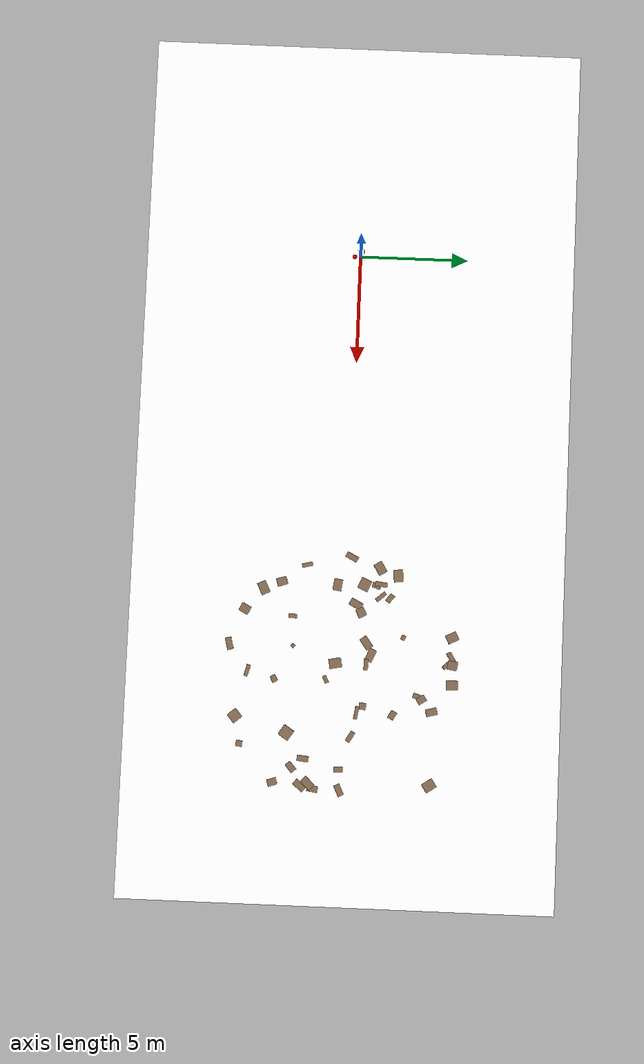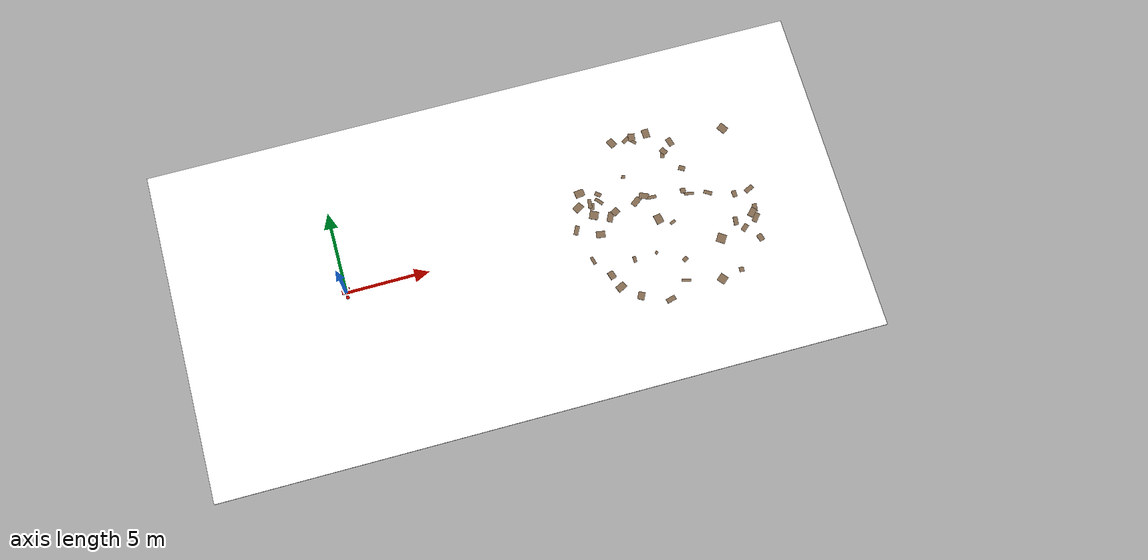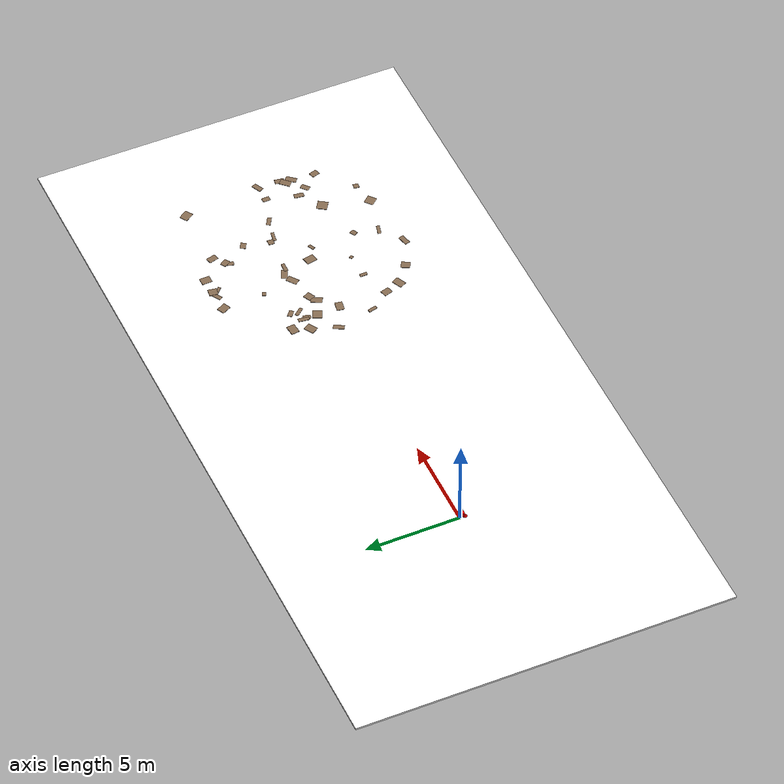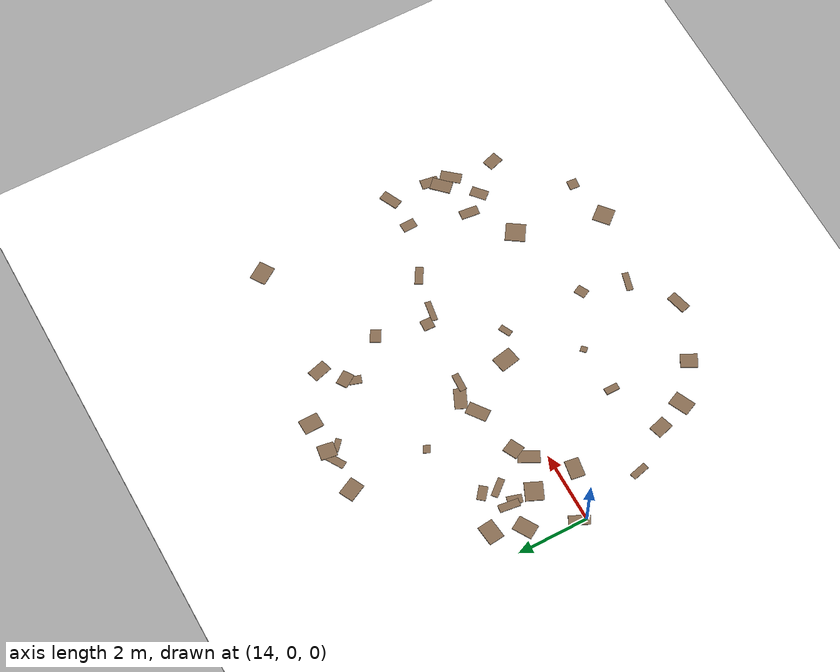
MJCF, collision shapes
<mujoco model="tita flat-and-rough scene">
  <include file="tita.xml"/>

  <statistic center="10 10 0.1" extent="20"/>

  <visual>
    <headlight diffuse=".8 .8 .8" ambient=".2 .2 .2" specular="1 1 1"/>
    <rgba force="1 0 0 1"/>
    <global azimuth="120" elevation="-20"/>
    <map force="0.01"/>
    <scale forcewidth="0.3" contactwidth="0.5" contactheight="0.2"/>
    <quality shadowsize="8192"/>
  </visual>

  <asset>
    <texture type="skybox" builtin="gradient" rgb1="1 1 1" rgb2="1 1 1" width="800" height="800"/>
    <texture type="2d" name="groundplane" builtin="checker" mark="edge" rgb1="1 1 1" rgb2="1 1 1" markrgb="0 0 0"
      width="300" height="300"/>
    <material name="groundplane" texture="groundplane" texuniform="true" texrepeat="5 5" reflectance="0"/>
    <material name="obstacle" rgba="0.5 0.4 0.3 1"/>
  </asset>

  <worldbody>
    <geom name="floor" type="box" pos="10 0 -0.05" size="20 10 0.05" material="groundplane"
          contype="1" conaffinity="0" priority="1" friction="0.6" condim="3"/>
    <geom name="rough_obstacle_0" type="box" pos="18.8883 4.6826 0.0099" size="0.1856 0.0822 0.0099" quat="0.93186 0 0 -0.36282" material="obstacle" contype="1" conaffinity="0" priority="1" friction="0.6" condim="3"/>
    <geom name="rough_obstacle_1" type="box" pos="19.7870 -3.1834 0.0089" size="0.1311 0.1603 0.0089" quat="0.85353 0 0 -0.52104" material="obstacle" contype="1" conaffinity="0" priority="1" friction="0.6" condim="3"/>
    <geom name="rough_obstacle_2" type="box" pos="18.9685 1.0124 0.0125" size="0.2564 0.0973 0.0125" quat="0.01876 0 0 0.99982" material="obstacle" contype="1" conaffinity="0" priority="1" friction="0.6" condim="3"/>
    <geom name="rough_obstacle_3" type="box" pos="18.9675 -0.3981 0.0090" size="0.2832 0.2236 0.0090" quat="0.63454 0 0 0.77289" material="obstacle" contype="1" conaffinity="0" priority="1" friction="0.6" condim="3"/>
    <geom name="rough_obstacle_4" type="box" pos="22.7927 -4.6474 0.0118" size="0.1385 0.1402 0.0118" quat="0.99897 0 0 -0.04543" material="obstacle" contype="1" conaffinity="0" priority="1" friction="0.6" condim="3"/>
    <geom name="rough_obstacle_5" type="box" pos="16.6359 -4.6474 0.0120" size="0.1986 0.2346 0.0120" quat="0.97060 0 0 -0.24068" material="obstacle" contype="1" conaffinity="0" priority="1" friction="0.6" condim="3"/>
    <geom name="rough_obstacle_6" type="box" pos="24.4731 -1.4429 0.0147" size="0.1774 0.2876 0.0147" quat="0.37533 0 0 0.92689" material="obstacle" contype="1" conaffinity="0" priority="1" friction="0.6" condim="3"/>
    <geom name="rough_obstacle_7" type="box" pos="18.5245 4.9252 0.0080" size="0.2848 0.1079 0.0080" quat="0.26937 0 0 -0.96304" material="obstacle" contype="1" conaffinity="0" priority="1" friction="0.6" condim="3"/>
    <geom name="rough_obstacle_8" type="box" pos="19.4593 -4.4238 0.0112" size="0.0889 0.2703 0.0112" quat="0.79319 0 0 0.60897" material="obstacle" contype="1" conaffinity="0" priority="1" friction="0.6" condim="3"/>
    <geom name="rough_obstacle_9" type="box" pos="14.5018 -1.8640 0.0131" size="0.2410 0.0931 0.0131" quat="0.61500 0 0 0.78852" material="obstacle" contype="1" conaffinity="0" priority="1" friction="0.6" condim="3"/>
    <geom name="rough_obstacle_10" type="box" pos="24.4827 -3.0649 0.0088" size="0.2152 0.1638 0.0088" quat="0.58983 0 0 0.80753" material="obstacle" contype="1" conaffinity="0" priority="1" friction="0.6" condim="3"/>
    <geom name="rough_obstacle_11" type="box" pos="19.7271 -0.8139 0.0104" size="0.0862 0.1746 0.0104" quat="0.84816 0 0 -0.52975" material="obstacle" contype="1" conaffinity="0" priority="1" friction="0.6" condim="3"/>
    <geom name="rough_obstacle_12" type="box" pos="15.3163 -3.0035 0.0080" size="0.2382 0.1875 0.0080" quat="0.59629 0 0 0.80277" material="obstacle" contype="1" conaffinity="0" priority="1" friction="0.6" condim="3"/>
    <geom name="rough_obstacle_13" type="box" pos="21.1833 0.6537 0.0129" size="0.0835 0.2948 0.0129" quat="0.65023 0 0 -0.75974" material="obstacle" contype="1" conaffinity="0" priority="1" friction="0.6" condim="3"/>
    <geom name="rough_obstacle_14" type="box" pos="21.5489 -4.9032 0.0082" size="0.2467 0.2507 0.0082" quat="0.90789 0 0 -0.41921" material="obstacle" contype="1" conaffinity="0" priority="1" friction="0.6" condim="3"/>
    <geom name="rough_obstacle_15" type="box" pos="21.2321 2.3093 0.0105" size="0.1928 0.1479 0.0105" quat="0.96656 0 0 -0.25645" material="obstacle" contype="1" conaffinity="0" priority="1" friction="0.6" condim="3"/>
    <geom name="rough_obstacle_16" type="box" pos="18.2588 -5.3038 0.0141" size="0.2844 0.1394 0.0141" quat="0.99155 0 0 0.12973" material="obstacle" contype="1" conaffinity="0" priority="1" friction="0.6" condim="3"/>
    <geom name="rough_obstacle_17" type="box" pos="15.8428 1.5824 0.0110" size="0.0945 0.2699 0.0110" quat="0.34645 0 0 -0.93807" material="obstacle" contype="1" conaffinity="0" priority="1" friction="0.6" condim="3"/>
    <geom name="rough_obstacle_18" type="box" pos="22.2186 -2.5131 0.0143" size="0.2651 0.2739 0.0143" quat="0.95757 0 0 -0.28819" material="obstacle" contype="1" conaffinity="0" priority="1" friction="0.6" condim="3"/>
    <geom name="rough_obstacle_19" type="box" pos="16.8881 -2.4294 0.0132" size="0.0947 0.1924 0.0132" quat="0.00094 0 0 -1.00000" material="obstacle" contype="1" conaffinity="0" priority="1" friction="0.6" condim="3"/>
    <geom name="rough_obstacle_20" type="box" pos="20.8822 0.9290 0.0144" size="0.1557 0.1557 0.0144" quat="0.71948 0 0 0.69451" material="obstacle" contype="1" conaffinity="0" priority="1" friction="0.6" condim="3"/>
    <geom name="rough_obstacle_21" type="box" pos="17.9871 0.9915 0.0085" size="0.1747 0.2989 0.0085" quat="0.44873 0 0 0.89367" material="obstacle" contype="1" conaffinity="0" priority="1" friction="0.6" condim="3"/>
    <geom name="rough_obstacle_22" type="box" pos="24.5926 -1.8058 0.0081" size="0.2925 0.1495 0.0081" quat="0.42274 0 0 -0.90625" material="obstacle" contype="1" conaffinity="0" priority="1" friction="0.6" condim="3"/>
    <geom name="rough_obstacle_23" type="box" pos="15.3459 1.3651 0.0080" size="0.2037 0.1202 0.0080" quat="0.80197 0 0 0.59737" material="obstacle" contype="1" conaffinity="0" priority="1" friction="0.6" condim="3"/>
    <geom name="rough_obstacle_24" type="box" pos="24.7329 -0.0031 0.0140" size="0.1370 0.2736 0.0140" quat="0.53290 0 0 0.84618" material="obstacle" contype="1" conaffinity="0" priority="1" friction="0.6" condim="3"/>
    <geom name="rough_obstacle_25" type="box" pos="23.3608 -1.7064 0.0123" size="0.1332 0.2587 0.0123" quat="0.05706 0 0 0.99837" material="obstacle" contype="1" conaffinity="0" priority="1" friction="0.6" condim="3"/>
    <geom name="rough_obstacle_26" type="box" pos="24.3623 4.1075 0.0112" size="0.2754 0.2269 0.0112" quat="0.47128 0 0 0.88198" material="obstacle" contype="1" conaffinity="0" priority="1" friction="0.6" condim="3"/>
    <geom name="rough_obstacle_27" type="box" pos="14.0596 0.1831 0.0087" size="0.1297 0.2909 0.0087" quat="0.97171 0 0 -0.23617" material="obstacle" contype="1" conaffinity="0" priority="1" friction="0.6" condim="3"/>
    <geom name="rough_obstacle_28" type="box" pos="15.2664 1.5728 0.0126" size="0.1074 0.2837 0.0126" quat="0.06377 0 0 0.99796" material="obstacle" contype="1" conaffinity="0" priority="1" friction="0.6" condim="3"/>
    <geom name="rough_obstacle_29" type="box" pos="24.7097 -1.2078 0.0099" size="0.1434 0.2446 0.0099" quat="0.08164 0 0 0.99666" material="obstacle" contype="1" conaffinity="0" priority="1" friction="0.6" condim="3"/>
    <geom name="rough_obstacle_30" type="box" pos="19.7574 4.9925 0.0128" size="0.2089 0.2694 0.0128" quat="0.99993 0 0 0.01155" material="obstacle" contype="1" conaffinity="0" priority="1" friction="0.6" condim="3"/>
    <geom name="rough_obstacle_31" type="box" pos="23.7932 -0.0614 0.0110" size="0.2019 0.1344 0.0110" quat="0.69941 0 0 0.71472" material="obstacle" contype="1" conaffinity="0" priority="1" friction="0.6" condim="3"/>
    <geom name="rough_obstacle_32" type="box" pos="22.2881 0.4262 0.0113" size="0.2581 0.1111 0.0113" quat="0.26739 0 0 0.96359" material="obstacle" contype="1" conaffinity="0" priority="1" friction="0.6" condim="3"/>
    <geom name="rough_obstacle_33" type="box" pos="18.8598 4.9852 0.0134" size="0.2033 0.2274 0.0134" quat="0.99719 0 0 -0.07487" material="obstacle" contype="1" conaffinity="0" priority="1" friction="0.6" condim="3"/>
    <geom name="rough_obstacle_34" type="box" pos="23.7684 -2.2396 0.0082" size="0.1435 0.2372 0.0082" quat="0.41499 0 0 0.90983" material="obstacle" contype="1" conaffinity="0" priority="1" friction="0.6" condim="3"/>
    <geom name="rough_obstacle_35" type="box" pos="20.3317 3.3912 0.0118" size="0.1708 0.1168 0.0118" quat="0.80611 0 0 0.59176" material="obstacle" contype="1" conaffinity="0" priority="1" friction="0.6" condim="3"/>
    <geom name="rough_obstacle_36" type="box" pos="21.0204 4.0961 0.0090" size="0.2600 0.1670 0.0090" quat="0.79765 0 0 -0.60312" material="obstacle" contype="1" conaffinity="0" priority="1" friction="0.6" condim="3"/>
    <geom name="rough_obstacle_37" type="box" pos="14.8434 2.3455 0.0136" size="0.2178 0.2803 0.0136" quat="0.66683 0 0 0.74521" material="obstacle" contype="1" conaffinity="0" priority="1" friction="0.6" condim="3"/>
    <geom name="rough_obstacle_38" type="box" pos="15.6459 -3.8353 0.0112" size="0.2910 0.2035 0.0112" quat="0.97545 0 0 0.22024" material="obstacle" contype="1" conaffinity="0" priority="1" friction="0.6" condim="3"/>
    <geom name="rough_obstacle_39" type="box" pos="20.4793 3.6141 0.0149" size="0.1613 0.2072 0.0149" quat="0.29057 0 0 -0.95685" material="obstacle" contype="1" conaffinity="0" priority="1" friction="0.6" condim="3"/>
    <geom name="rough_obstacle_40" type="box" pos="15.9005 2.0108 0.0089" size="0.2016 0.1227 0.0089" quat="0.94234 0 0 -0.33465" material="obstacle" contype="1" conaffinity="0" priority="1" friction="0.6" condim="3"/>
    <geom name="rough_obstacle_41" type="box" pos="16.6030 0.6940 0.0147" size="0.2107 0.1957 0.0147" quat="0.22960 0 0 -0.97329" material="obstacle" contype="1" conaffinity="0" priority="1" friction="0.6" condim="3"/>
    <geom name="rough_obstacle_42" type="box" pos="15.3664 -0.4294 0.0135" size="0.2666 0.1952 0.0135" quat="0.99720 0 0 -0.07480" material="obstacle" contype="1" conaffinity="0" priority="1" friction="0.6" condim="3"/>
    <geom name="rough_obstacle_43" type="box" pos="17.6765 2.6814 0.0111" size="0.1120 0.0996 0.0111" quat="0.97491 0 0 -0.22262" material="obstacle" contype="1" conaffinity="0" priority="1" friction="0.6" condim="3"/>
    <geom name="rough_obstacle_44" type="box" pos="16.2203 0.4487 0.0136" size="0.1694 0.2960 0.0136" quat="0.97144 0 0 -0.23730" material="obstacle" contype="1" conaffinity="0" priority="1" friction="0.6" condim="3"/>
    <geom name="rough_obstacle_45" type="box" pos="14.5361 1.5054 0.0120" size="0.2802 0.2057 0.0120" quat="0.96347 0 0 0.26781" material="obstacle" contype="1" conaffinity="0" priority="1" friction="0.6" condim="3"/>
    <geom name="rough_obstacle_46" type="box" pos="18.2506 -2.3689 0.0124" size="0.0895 0.0814 0.0124" quat="0.37597 0 0 -0.92663" material="obstacle" contype="1" conaffinity="0" priority="1" friction="0.6" condim="3"/>
    <geom name="rough_obstacle_47" type="box" pos="15.3083 0.8149 0.0144" size="0.2610 0.2500 0.0144" quat="0.20657 0 0 0.97843" material="obstacle" contype="1" conaffinity="0" priority="1" friction="0.6" condim="3"/>
    <geom name="rough_obstacle_48" type="box" pos="18.5364 1.2118 0.0080" size="0.1714 0.2952 0.0080" quat="0.83744 0 0 0.54653" material="obstacle" contype="1" conaffinity="0" priority="1" friction="0.6" condim="3"/>
    <geom name="rough_obstacle_49" type="box" pos="17.5910 4.9274 0.0138" size="0.2626 0.2098 0.0138" quat="0.52576 0 0 0.85063" material="obstacle" contype="1" conaffinity="0" priority="1" friction="0.6" condim="3"/>
  </worldbody>
  <include file="sensor_feet.xml"/>
</mujoco>

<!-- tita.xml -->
<mujoco model="tita">
  <option gravity="0 0 -9.81" iterations="10" ls_iterations="5"  integrator="Euler" timestep="0.002"/>
  <default>
    <default class="robot">

      <joint armature="0.0005" damping="0.0"/>
      <default class="joint_1">
        <joint range="-0.785398 0.785398" frictionloss="0.0" />
        <motor ctrllimited="true" ctrlrange="-120 120" forcerange="-120 120" gear="1" />
      </default>
      <default class="joint_2">
        <joint range="-1.919862 3.490659" frictionloss="0.0" />
        <motor ctrllimited="true" ctrlrange="-120 120" forcerange="-120 120" gear="1" />
      </default>
      <default class="joint_3">
        <joint range="-2.670354 -0.698132" frictionloss="0.0" />
        <motor ctrllimited="true" ctrlrange="-120 120" forcerange="-120 120" gear="1" />
      </default>
      <default class="joint_4">
        <joint limited="false" frictionloss="0.0" />
        <motor ctrllimited="true" ctrlrange="-120 120" forcerange="-120 120" gear="1" />
      </default>

      <default class="visual">
        <geom material="visualgeom" contype="0" conaffinity="0" group="2" />
      </default>
      <default class="collision">
        <geom material="collision_material" rgba="1 0 0 0.1" condim="3" contype="0" conaffinity="1" priority="1" group="1" solref="0.005 1" friction="1 0.01 0.01" />
        <equality solimp="0.99 0.999 1e-5" solref="0.005 1" />

      </default>
    </default>
  </default>

  <compiler angle="radian" />

  <visual>
    <headlight diffuse="0.6 0.6 0.6" ambient="0.1 0.1 0.1" specular="0.9 0.9 0.9"/>
    <rgba haze="0.15 0.25 0.35 1"/>
    <global azimuth="-140" elevation="-20" fovy="10"/>
  </visual>

  <asset>
    <material name="black" rgba="0.19607843137254902 0.19607843137254902 0.19607843137254902 1.0" />
    <material name="blue" rgba="0.0 0.0 0.8 1.0" />
    <material name="green" rgba="0.0 0.8 0.0 1.0" />
    <material name="grey" rgba="0.2 0.2 0.2 1.0" />
    <material name="silver" rgba="0.9137254901960784 0.9137254901960784 0.8470588235294118 1.0" />
    <material name="orange" rgba="1.0 0.4235294117647059 0.0392156862745098 1.0" />
    <material name="brown" rgba="0.8705882352941177 0.8117647058823529 0.7647058823529411 1.0" />
    <material name="red" rgba="0.8 0.0 0.0 1.0" />
    <material name="white" rgba="1.0 1.0 1.0 1.0" />
    <material name="default_material" rgba="0.7 0.7 0.7 1" />
    <material name="collision_material" rgba="1.0 0.28 0.1 0.9" />
    <texture name="grid" type="2d" builtin="checker" width="512" height="512" rgb1=".1 .2 .3" rgb2=".2 .3 .4"/>
    <material name="grid" texture="grid" texrepeat="1 1" texuniform="true" reflectance=".2"/>
    <mesh name="base_link.STL" file="meshes/base_link.STL" />
    <mesh name="left_leg_1.STL" file="meshes/left_leg_1.STL" />
    <mesh name="left_leg_2.STL" file="meshes/left_leg_2.STL" />
    <mesh name="left_leg_3.STL" file="meshes/left_leg_3.STL" />
    <mesh name="left_leg_4.STL" file="meshes/left_leg_4.STL" />
    <mesh name="right_leg_1.STL" file="meshes/right_leg_1.STL" />
    <mesh name="right_leg_2.STL" file="meshes/right_leg_2.STL" />
    <mesh name="right_leg_3.STL" file="meshes/right_leg_3.STL" />
    <mesh name="right_leg_4.STL" file="meshes/right_leg_4.STL" />
  </asset>

  <worldbody>
    <body name="base_link" pos="0.00000000 0.00000000 0.41700019" quat="1 0 0 0" childclass="robot">
      <inertial
      pos="0.020452 0.0000035457 0.01871"
      fullinertia="0.061855 0.036934 0.071232  -2.6029e-05 0.00081082 -1.7269e-05"
      mass="13.2"/>
      <freejoint name="floating_base" />
      <geom name="base_link_collision" pos="0 0 0.017" quat="1.0 0.0 0.0 0.0" type="box" size="0.235 0.15 0.095" class="collision" />
      <geom name="base_link_visual" pos="0 0 0" quat="1.0 0.0 0.0 0.0" material="black" type="mesh" mesh="base_link.STL" class="visual" />
      <body name="spad" pos="0.24052 -0.0019 0.064455" quat="0.3210553530053693 0.630017161436136 0.6300194756226387 0.3210565323096963" />
      <body name="spad1" pos="0.21953 -0.0019 -0.030142" quat="0.17822474632683974 0.684276335404186 0.6842788488961296 0.1782254009840898" />
      <body name="left_camera" pos="0.23416 0.075 0.04036" quat="0.49999816339744846 0.4999999999966269 0.5000018366025516 0.4999999999966269" />
      <body name="ch201" pos="0.23782 0 0.018636" quat="0.5896590127793068 0.39025685393799525 0.39025828743409546 0.5896611787217797" />
      <body name="right_camara" pos="0.23416 -0.075001 0.04036" quat="0.49999816339744846 0.4999999999966269 0.5000018366025516 0.4999999999966269" />
      <body name="imu_link" pos="0 0 0" quat="1.0 0.0 0.0 0.0">
        <inertial pos="0 0 0" quat="1.0 0.0 0.0 0.0" mass="0.001" diaginertia="0.0001 0.0001 0.0001" />
        <geom name="imu_link_collision" pos="0 0 0" quat="1.0 0.0 0.0 0.0" type="box" size="0.0005 0.0005 0.0005" class="collision" />
        <geom name="imu_link_visual" pos="0 0 0" quat="1.0 0.0 0.0 0.0" material="red" type="box" size="0.0005 0.0005 0.0005" class="visual" />
      </body>
      <body name="left_leg_1" pos="0 0.0895 0" quat="0.49999816339744846 0.4999999999966269 0.5000018366025516 0.4999999999966269">
        <joint name="joint_left_leg_1" type="hinge" ref="0.0" class="joint_1" range="-0.785398 0.785398" axis="0 0 1" />
        <inertial pos="0.0016025 5.0253E-05 0.000638" quat="1.0 0.0 0.0 0.0" mass="2.064" diaginertia="0.0043044 0.0029982 0.0022703" />
        <geom name="left_leg_1_visual" pos="0 0 0" quat="1.0 0.0 0.0 0.0" material="black" type="mesh" mesh="left_leg_1.STL" class="visual" />
        <body name="left_leg_2" pos="0.1426 0 0" quat="0.49999816339744846 -0.4999999999966269 0.5000018366025516 -0.4999999999966269">
          <joint name="joint_left_leg_2" type="hinge" ref="0.0" class="joint_2" range="-1.919862 3.490659" axis="0 0 1" />
          <inertial pos="0.021763 0.0019069 -0.027868" quat="1.0 0.0 0.0 0.0" mass="3.0984" diaginertia="0.0029784 0.0064836 0.0088353" />
          <geom name="left_leg_2_visual" pos="0 0 0" quat="1.0 0.0 0.0 0.0" material="black" type="mesh" mesh="left_leg_2.STL" class="visual" />
          <body name="left_leg_3" pos="0.2 0 0" quat="1.0 0.0 0.0 0.0">
            <joint name="joint_left_leg_3" type="hinge" ref="0.0" class="joint_3" range="-2.670354 -0.698132" axis="0 0 1" />
            <inertial pos="0.095348 0.011698 0.001838" mass="0.57244" fullinertia="0.00030595 0.0032009 0.0034209  0.00035537 -0.00011764 1.129E-05" />
            <geom name="left_leg_3_collision" pos="0.1 0.021 -0.002" quat="0.9978556418172091 0.0 0.0 -0.06545317481654923" type="box" size="0.1 0.035 0.025" class="collision" />
            <geom name="left_leg_3_visual" pos="0 0 0" quat="1.0 0.0 0.0 0.0" material="black" type="mesh" mesh="left_leg_3.STL" class="visual" />
            <body name="left_leg_4" pos="0.2 0 0.0514" quat="1.0 0.0 0.0 0.0">
              <joint name="joint_left_leg_4" type="hinge" ref="0.0" class="joint_4" range="-6.283185e4 6.283185e4" axis="0 0 1" />
              <inertial pos="-2.267E-06 -1.6471E-06 -0.00095616" quat="1.0 0.0 0.0 0.0" mass="1.5094" diaginertia="0.0035466 0.0035053 0.0069049" />
              <geom name="left_leg_4_collision" pos="0 0 0" quat="1.0 0.0 0.0 0.0" type="capsule" size="0.0925 0.017" class="collision" />
              <geom name="left_leg_4_visual" pos="0 0 0" quat="1.0 0.0 0.0 0.0" material="black" type="mesh" mesh="left_leg_4.STL" class="visual" />
              <site name="left_leg_4_site" pos="0 0 0" size="0.01" rgba="1 0 0 0.5"/>
            </body>
          </body>
        </body>
      </body>
      <body name="right_leg_1" pos="0 -0.0895 0" quat="0.49999816339744846 0.4999999999966269 0.5000018366025516 0.4999999999966269">
        <joint name="joint_right_leg_1" type="hinge" ref="0.0" class="joint_1" range="-0.785398 0.785398" axis="0 0 1" />
        <inertial pos="-0.0016025 5.0253E-05 0.00063801" quat="1.0 0.0 0.0 0.0" mass="2.064" diaginertia="0.0043044 0.0029982 0.0022703" />
        <geom name="right_leg_1_visual" pos="0 0 0" quat="1.0 0.0 0.0 0.0" material="black" type="mesh" mesh="right_leg_1.STL" class="visual" />
        <body name="right_leg_2" pos="-0.1426 0 0" quat="0.49999816339744846 -0.4999999999966269 0.5000018366025516 -0.4999999999966269">
          <joint name="joint_right_leg_2" type="hinge" ref="0.0" class="joint_2" range="-1.919862 3.490659" axis="0 0 1" />
          <inertial pos="0.021763 0.0019065 0.027873" quat="1.0 0.0 0.0 0.0" mass="3.0987" diaginertia="0.0029784 0.0064836 0.0088353" />
          <geom name="right_leg_2_visual" pos="0 0 0" quat="1.0 0.0 0.0 0.0" material="black" type="mesh" mesh="right_leg_2.STL" class="visual" />
          <body name="right_leg_3" pos="0.2 0 0" quat="1.0 0.0 0.0 0.0">
            <joint name="joint_right_leg_3" type="hinge" ref="0.0" class="joint_3" range="-2.670354 -0.698132" axis="0 0 1" />
            <inertial pos="0.095348 0.011698 -0.001838" mass="0.57244" fullinertia="0.00030595 0.0032009 0.0034209  0.00035537 0.00011764 -1.129E-05" />
            <geom name="right_leg_3_collision" pos="0.1 0.021 -0.002" quat="0.9978556418172091 0.0 0.0 -0.06545317481654923" type="box" size="0.1 0.035 0.025" class="collision" />
            <geom name="right_leg_3_visual" pos="0 0 0" quat="1.0 0.0 0.0 0.0" material="black" type="mesh" mesh="right_leg_3.STL" class="visual" />
            <body name="right_leg_4" pos="0.2 0 -0.0514" quat="1.0 0.0 0.0 0.0">
              <joint name="joint_right_leg_4" type="hinge" ref="0.0" class="joint_4" range="-6.283185e4 6.283185e4" axis="0 0 1" />
              <inertial pos="-2.3798E-06 -1.5854E-06 0.00095595" quat="1.0 0.0 0.0 0.0" mass="1.5094" diaginertia="0.0035465 0.0035052 0.0069047" />
              <geom name="right_leg_4_collision" pos="0 0 0" quat="1.0 0.0 0.0 0.0" type="capsule" size="0.0925 0.017" class="collision" />
              <geom name="right_leg_4_visual" pos="0 0 0" quat="1.0 0.0 0.0 0.0" material="black" type="mesh" mesh="right_leg_4.STL" class="visual" />
              <site name="right_leg_4_site" pos="0 0 0" size="0.01" rgba="1 0 0 0.5"/>
            </body>
          </body>
        </body>
      </body>
      <site name="base_link_site" pos="0 0 0" quat="1 0 0 0" />
      <camera name="front_camera" mode="track" fovy="90.0" quat="4.329780281177467e-17 4.329780281177466e-17 0.7071067811865475 0.7071067811865476" pos="0.0 2.0 0.5" />
      <camera name="side_camera" mode="track" fovy="90.0" quat="-0.5 -0.4999999999999999 0.5 0.5000000000000001" pos="-2.0 0.0 0.5" />
      <camera name="track" pos="0.846 -1.3 0.316" xyaxes="0.866 0.500 0.000 -0.171 0.296 0.940" mode="trackcom"/>
      <site name="imu" pos="0 0 0" quat="1 0 0 0" size="0.01" type="sphere" rgba="1 0 0 0.5" />
    </body>
  </worldbody>

  <actuator>
    <motor name="joint_left_leg_1_ctrl" joint="joint_left_leg_1" class="joint_1" />
    <motor name="joint_left_leg_2_ctrl" joint="joint_left_leg_2" class="joint_2" />
    <motor name="joint_left_leg_3_ctrl" joint="joint_left_leg_3" class="joint_3" />
    <motor name="joint_left_leg_4_ctrl" joint="joint_left_leg_4" class="joint_4" />
    <motor name="joint_right_leg_1_ctrl" joint="joint_right_leg_1" class="joint_1" />
    <motor name="joint_right_leg_2_ctrl" joint="joint_right_leg_2" class="joint_2" />
    <motor name="joint_right_leg_3_ctrl" joint="joint_right_leg_3" class="joint_3" />
    <motor name="joint_right_leg_4_ctrl" joint="joint_right_leg_4" class="joint_4" />
  </actuator>

  <contact>
    <exclude body1="base_link" body2="imu_link" />
    <exclude body1="left_leg_3" body2="left_leg_4" />
    <exclude body1="right_leg_3" body2="right_leg_4" />
  </contact>

  <sensor>
    <subtreecom name="base_subtree_com" body="base_link"/>
    <subtreelinvel name="base_subtree_linvel" body="base_link"/>
    <framepos name="base_link_site_pos" objtype="site" objname="base_link_site" />
    <framequat name="base_link_site_quat" objtype="site" objname="base_link_site" />
    <framelinvel name="base_link_site_linvel" objtype="site" objname="base_link_site" />
    <frameangvel name="base_link_site_angvel" objtype="site" objname="base_link_site" />
    <velocimeter name="base_link_site_vel" site="base_link_site" />
  </sensor>

  <sensor>
    <gyro site="imu" name="gyro"/>
    <velocimeter site="imu" name="local_linvel"/>
    <accelerometer site="imu" name="accelerometer"/>
    <framezaxis objtype="site" objname="imu" name="upvector"/>
    <framexaxis objtype="site" objname="imu" name="forwardvector"/>
    <framelinvel objtype="site" objname="imu" name="global_linvel"/>
    <frameangvel objtype="site" objname="imu" name="global_angvel"/>
    <framepos objtype="site" objname="imu" name="position"/>
    <framequat objtype="site" objname="imu" name="orientation"/>
    <framelinvel objtype="site" objname="left_leg_4_site"  name="left_leg_4_site_global_linvel"/>
    <framelinvel objtype="site" objname="right_leg_4_site" name="right_leg_4_site_global_linvel"/>
    <framexaxis objtype="site"  objname="left_leg_4_site"  name="left_leg_4_site_upvector"/>
    <framexaxis objtype="site"  objname="right_leg_4_site" name="right_leg_4_site_upvector"/>

    <framepos objtype="site" objname="left_leg_4_site"  name="left_leg_4_site_pos" reftype="site" refname="imu"/>
    <framepos objtype="site" objname="right_leg_4_site" name="right_leg_4_site_pos" reftype="site" refname="imu"/>

    <touch name="left_leg_4" site="left_leg_4_site"/>
    <touch name="right_leg_4" site="right_leg_4_site"/>
  </sensor>

  <keyframe>
    <key name="home" qpos="
    0 0 0.44
    1 0 0 0
    0 0.5 -1.0 0
    0 0.5 -1.0 0"
    />
  </keyframe>
</mujoco>

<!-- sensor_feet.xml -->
<mujoco>
  <sensor>
    <contact name="FR_floor_found" geom1="right_leg_4_collision" geom2="floor" reduce="mindist" num="1" data="found"/>
    <contact name="FL_floor_found" geom1="left_leg_4_collision" geom2="floor" reduce="mindist" num="1" data="found"/>
  </sensor>
</mujoco>
